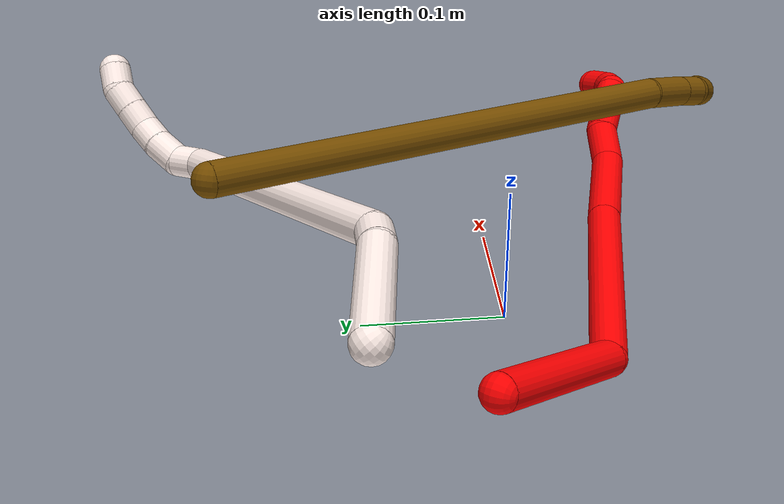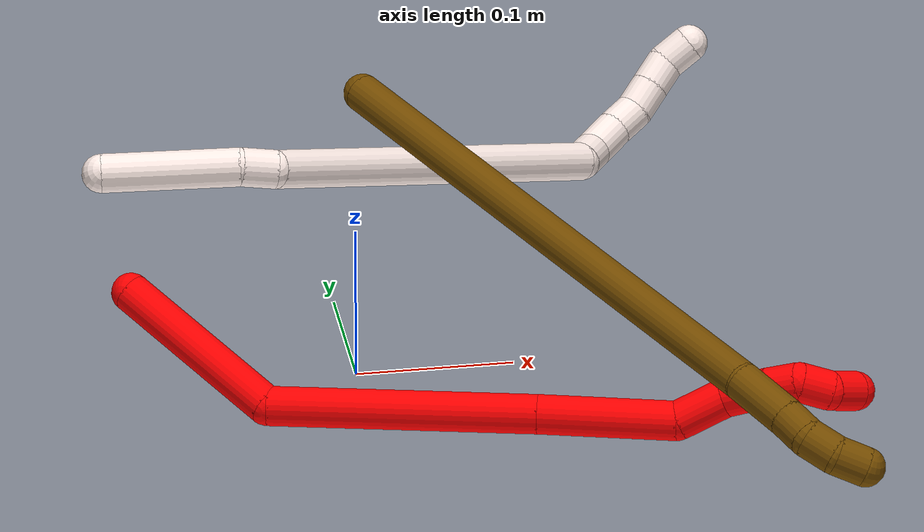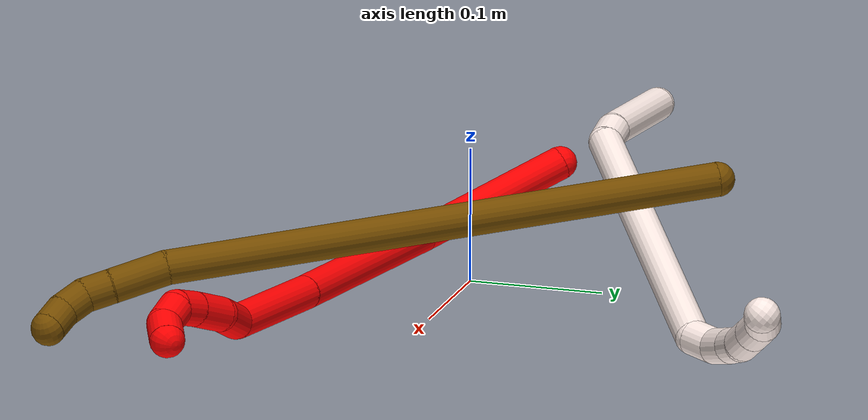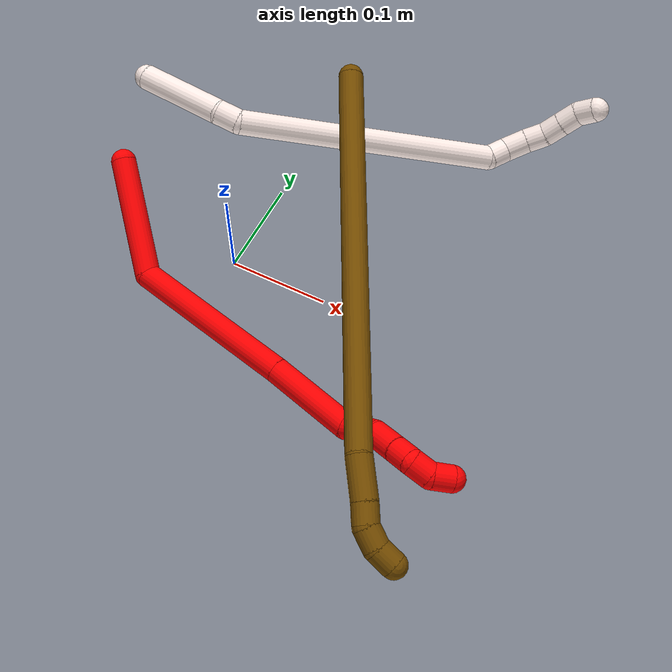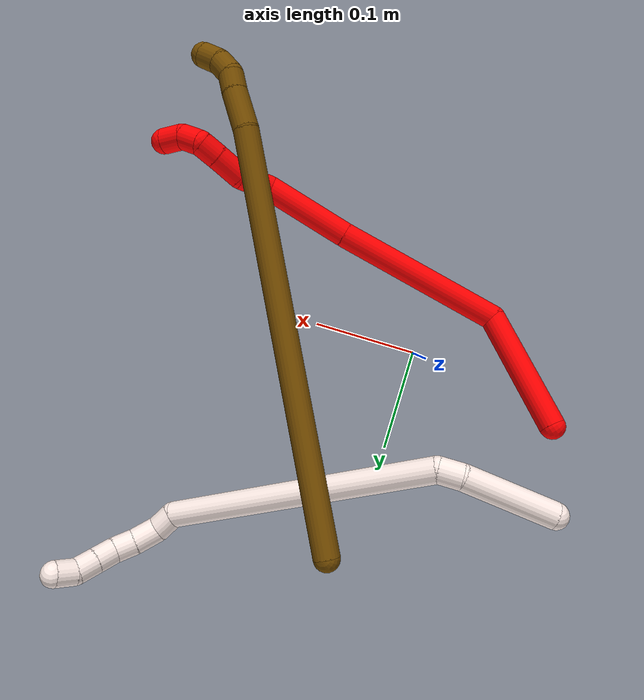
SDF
<sdf version="1.7">
 <world name="default">
  <model name="photoneo_s_sensor">
   <static>1</static>
   <pose>0 0 2 1.57079 1.57079 3.14159</pose>
   <link name="link">
    <inertial><mass>0.1</mass></inertial>
    <sensor name="sensor" type="depth">
     <update_rate>30</update_rate>
     <camera>
      <horizontal_fov>1.22</horizontal_fov>
      <image><width>1920</width><height>1200</height><format>B8G8R8</format></image>
      <clip><near>0.1</near><far>4</far></clip>
      <depth_camera><output>points</output></depth_camera>
     </camera>
     <plugin name="camera_plugin" filename="libgazebo_ros_depth_camera.so">
      <baseline>0.2</baseline>
      <alwaysOn>1</alwaysOn>
      <updateRate>0.0</updateRate>
      <cameraName>camera_ir</cameraName>
      <imageTopicName>/camera/color/image_raw</imageTopicName>
      <cameraInfoTopicName>/camera/color/camera_info</cameraInfoTopicName>
      <depthImageTopicName>/camera/depth/image_raw</depthImageTopicName>
      <depthImageCameraInfoTopicName>/camera/depth/camera_info</depthImageCameraInfoTopicName>
      <pointCloudTopicName>/camera/depth/points</pointCloudTopicName>
      <frameName>fr_optical</frameName>
      <pointCloudCutoff>0.1</pointCloudCutoff>
      <pointCloudCutoffMax>2.0</pointCloudCutoffMax>
      <distortionK1>0</distortionK1>
      <distortionK2>0</distortionK2>
      <distortionK3>0</distortionK3>
      <distortionT1>0</distortionT1>
      <distortionT2>0</distortionT2>
      <CxPrime>0</CxPrime>
      <Cx>0</Cx>
      <Cy>0</Cy>
      <focalLength>0</focalLength>
      <hackBaseline>0</hackBaseline>
     </plugin>
    </sensor>
   </link>
  </model>
  <model name="bin">
   <static>1</static>
   <link name="bottom">
    <collision name="collision-bottom">
     <pose>0 0 -0.01 0 -0 0</pose>
     <geometry><box><size>0.8 0.6 0.02</size></box></geometry>
     <surface>
      <friction><ode><mu>100</mu><mu2>100</mu2></ode></friction>
      <contact><collide_bitmask>65535</collide_bitmask></contact>
     </surface>
    </collision>
   </link>
   <link name="west_wall">
    <collision name="collision-west_wall">
     <pose>-0.41 0 0.1 0 -0 0</pose>
     <geometry><box><size>0.02 0.6 0.2</size></box></geometry>
     <surface>
      <friction><ode><mu>100</mu><mu2>100</mu2></ode></friction>
      <contact><collide_bitmask>65535</collide_bitmask></contact>
     </surface>
    </collision>
   </link>
   <link name="east_wall">
    <collision name="collision-east_wall">
     <pose>0.41 0 0.1 0 -0 0</pose>
     <geometry><box><size>0.02 0.6 0.2</size></box></geometry>
     <surface>
      <friction><ode><mu>100</mu><mu2>100</mu2></ode></friction>
      <contact><collide_bitmask>65535</collide_bitmask></contact>
     </surface>
    </collision>
   </link>
   <link name="south_wall">
    <collision name="collision-south_wall">
     <pose>0 -0.31 0.1 0 -0 0</pose>
     <geometry><box><size>0.8 0.02 0.2</size></box></geometry>
     <surface>
      <friction><ode><mu>100</mu><mu2>100</mu2></ode></friction>
      <contact><collide_bitmask>65535</collide_bitmask></contact>
     </surface>
    </collision>
   </link>
   <link name="north_wall">
    <collision name="collision-north_wall">
     <pose>0 0.31 0.1 0 -0 0</pose>
     <geometry><box><size>0.8 0.02 0.2</size></box></geometry>
     <surface>
      <friction><ode><mu>100</mu><mu2>100</mu2></ode></friction>
      <contact><collide_bitmask>65535</collide_bitmask></contact>
     </surface>
    </collision>
   </link>
  </model>
  <model name="2">
   <static>0</static>
   <link name="2">
    <collision name="collision-cylinder-e_1_1_4">
     <pose>0.050982 -0.031124 0.00722 1.34285 1.01097 0.828609</pose>
     <geometry><cylinder><radius>0.0125</radius><length>0.120334</length></cylinder></geometry>
     <surface>
      <friction><ode><mu>1.16</mu><mu2>1.16</mu2><slip1>0</slip1><slip2>0</slip2></ode></friction>
      <contact><ode><kp>1e+06</kp><kd>1</kd><max_vel>0</max_vel><min_depth>0.001</min_depth></ode></contact>
     </surface>
    </collision>
    <visual name="visual-cylinder-e_1_1_4">
     <pose>0.050982 -0.031124 0.00722 1.34285 1.01097 0.828609</pose>
     <geometry><cylinder><radius>0.0125</radius><length>0.120334</length></cylinder></geometry>
     <material><ambient>1 0 0 1</ambient></material>
    </visual>
    <collision name="collision-cylinder-e_2_4_5">
     <pose>0.177278 -0.070974 -0.022853 2.91176 1.10034 2.76957</pose>
     <geometry><cylinder><radius>0.0125</radius><length>0.168986</length></cylinder></geometry>
     <surface>
      <friction><ode><mu>1.16</mu><mu2>1.16</mu2><slip1>0</slip1><slip2>0</slip2></ode></friction>
      <contact><ode><kp>1e+06</kp><kd>1</kd><max_vel>0</max_vel><min_depth>0.001</min_depth></ode></contact>
     </surface>
    </collision>
    <visual name="visual-cylinder-e_2_4_5">
     <pose>0.177278 -0.070974 -0.022853 2.91176 1.10034 2.76957</pose>
     <geometry><cylinder><radius>0.0125</radius><length>0.168986</length></cylinder></geometry>
     <material><ambient>1 0 0 1</ambient></material>
    </visual>
    <collision name="collision-cylinder-e_3_5_6">
     <pose>0.292423 -0.084312 -0.077571 2.88277 1.14582 2.74345</pose>
     <geometry><cylinder><radius>0.0125</radius><length>0.087441</length></cylinder></geometry>
     <surface>
      <friction><ode><mu>1.16</mu><mu2>1.16</mu2><slip1>0</slip1><slip2>0</slip2></ode></friction>
      <contact><ode><kp>1e+06</kp><kd>1</kd><max_vel>0</max_vel><min_depth>0.001</min_depth></ode></contact>
     </surface>
    </collision>
    <visual name="visual-cylinder-e_3_5_6">
     <pose>0.292423 -0.084312 -0.077571 2.88277 1.14582 2.74345</pose>
     <geometry><cylinder><radius>0.0125</radius><length>0.087441</length></cylinder></geometry>
     <material><ambient>1 0 0 1</ambient></material>
    </visual>
    <collision name="collision-cylinder-e_4_6_7">
     <pose>0.345168 -0.082914 -0.103205 -2.50947 0.903467 -1.95547</pose>
     <geometry><cylinder><radius>0.0125</radius><length>0.03288</length></cylinder></geometry>
     <surface>
      <friction><ode><mu>1.16</mu><mu2>1.16</mu2><slip1>0</slip1><slip2>0</slip2></ode></friction>
      <contact><ode><kp>1e+06</kp><kd>1</kd><max_vel>0</max_vel><min_depth>0.001</min_depth></ode></contact>
     </surface>
    </collision>
    <visual name="visual-cylinder-e_4_6_7">
     <pose>0.345168 -0.082914 -0.103205 -2.50947 0.903467 -1.95547</pose>
     <geometry><cylinder><radius>0.0125</radius><length>0.03288</length></cylinder></geometry>
     <material><ambient>1 0 0 1</ambient></material>
    </visual>
    <collision name="collision-cylinder-e_5_7_8">
     <pose>0.372043 -0.073567 -0.114717 -2.3513 1.24643 -2.09002</pose>
     <geometry><cylinder><radius>0.0125</radius><length>0.029459</length></cylinder></geometry>
     <surface>
      <friction><ode><mu>1.16</mu><mu2>1.16</mu2><slip1>0</slip1><slip2>0</slip2></ode></friction>
      <contact><ode><kp>1e+06</kp><kd>1</kd><max_vel>0</max_vel><min_depth>0.001</min_depth></ode></contact>
     </surface>
    </collision>
    <visual name="visual-cylinder-e_5_7_8">
     <pose>0.372043 -0.073567 -0.114717 -2.3513 1.24643 -2.09002</pose>
     <geometry><cylinder><radius>0.0125</radius><length>0.029459</length></cylinder></geometry>
     <material><ambient>1 0 0 1</ambient></material>
    </visual>
    <collision name="collision-cylinder-e_6_8_9">
     <pose>0.395536 -0.06852 -0.120577 -2.55162 1.25857 -2.35082</pose>
     <geometry><cylinder><radius>0.0125</radius><length>0.020033</length></cylinder></geometry>
     <surface>
      <friction><ode><mu>1.16</mu><mu2>1.16</mu2><slip1>0</slip1><slip2>0</slip2></ode></friction>
      <contact><ode><kp>1e+06</kp><kd>1</kd><max_vel>0</max_vel><min_depth>0.001</min_depth></ode></contact>
     </surface>
    </collision>
    <visual name="visual-cylinder-e_6_8_9">
     <pose>0.395536 -0.06852 -0.120577 -2.55162 1.25857 -2.35082</pose>
     <geometry><cylinder><radius>0.0125</radius><length>0.020033</length></cylinder></geometry>
     <material><ambient>1 0 0 1</ambient></material>
    </visual>
    <collision name="collision-cylinder-e_7_9_10">
     <pose>0.412667 -0.070769 -0.128764 2.52846 0.83465 1.90152</pose>
     <geometry><cylinder><radius>0.0125</radius><length>0.020507</length></cylinder></geometry>
     <surface>
      <friction><ode><mu>1.16</mu><mu2>1.16</mu2><slip1>0</slip1><slip2>0</slip2></ode></friction>
      <contact><ode><kp>1e+06</kp><kd>1</kd><max_vel>0</max_vel><min_depth>0.001</min_depth></ode></contact>
     </surface>
    </collision>
    <visual name="visual-cylinder-e_7_9_10">
     <pose>0.412667 -0.070769 -0.128764 2.52846 0.83465 1.90152</pose>
     <geometry><cylinder><radius>0.0125</radius><length>0.020507</length></cylinder></geometry>
     <material><ambient>1 0 0 1</ambient></material>
    </visual>
    <collision name="collision-cylinder-e_8_10_2">
     <pose>0.424015 -0.077462 -0.143457 2.84892 0.377224 1.82655</pose>
     <geometry><cylinder><radius>0.0125</radius><length>0.020361</length></cylinder></geometry>
     <surface>
      <friction><ode><mu>1.16</mu><mu2>1.16</mu2><slip1>0</slip1><slip2>0</slip2></ode></friction>
      <contact><ode><kp>1e+06</kp><kd>1</kd><max_vel>0</max_vel><min_depth>0.001</min_depth></ode></contact>
     </surface>
    </collision>
    <visual name="visual-cylinder-e_8_10_2">
     <pose>0.424015 -0.077462 -0.143457 2.84892 0.377224 1.82655</pose>
     <geometry><cylinder><radius>0.0125</radius><length>0.020361</length></cylinder></geometry>
     <material><ambient>1 0 0 1</ambient></material>
    </visual>
    <collision name="collision-sphere-2">
     <pose>0.427765 -0.080192 -0.152519 0 -0 0</pose>
     <geometry><sphere><radius>0.0125</radius></sphere></geometry>
     <surface>
      <friction><ode><mu>1.16</mu><mu2>1.16</mu2><slip1>0</slip1><slip2>0</slip2></ode></friction>
      <contact><ode><kp>1e+06</kp><kd>1</kd><max_vel>0</max_vel><min_depth>0.001</min_depth></ode></contact>
     </surface>
    </collision>
    <visual name="visual-sphere-2">
     <pose>0.427765 -0.080192 -0.152519 0 -0 0</pose>
     <geometry><sphere><radius>0.0125</radius></sphere></geometry>
     <material><ambient>1 0 0 1</ambient></material>
    </visual>
    <collision name="collision-sphere-10">
     <pose>0.420265 -0.074731 -0.134395 0 -0 0</pose>
     <geometry><sphere><radius>0.0125</radius></sphere></geometry>
     <surface>
      <friction><ode><mu>1.16</mu><mu2>1.16</mu2><slip1>0</slip1><slip2>0</slip2></ode></friction>
      <contact><ode><kp>1e+06</kp><kd>1</kd><max_vel>0</max_vel><min_depth>0.001</min_depth></ode></contact>
     </surface>
    </collision>
    <visual name="visual-sphere-10">
     <pose>0.420265 -0.074731 -0.134395 0 -0 0</pose>
     <geometry><sphere><radius>0.0125</radius></sphere></geometry>
     <material><ambient>1 0 0 1</ambient></material>
    </visual>
    <collision name="collision-sphere-9">
     <pose>0.405069 -0.066808 -0.123134 0 -0 0</pose>
     <geometry><sphere><radius>0.0125</radius></sphere></geometry>
     <surface>
      <friction><ode><mu>1.16</mu><mu2>1.16</mu2><slip1>0</slip1><slip2>0</slip2></ode></friction>
      <contact><ode><kp>1e+06</kp><kd>1</kd><max_vel>0</max_vel><min_depth>0.001</min_depth></ode></contact>
     </surface>
    </collision>
    <visual name="visual-sphere-9">
     <pose>0.405069 -0.066808 -0.123134 0 -0 0</pose>
     <geometry><sphere><radius>0.0125</radius></sphere></geometry>
     <material><ambient>1 0 0 1</ambient></material>
    </visual>
    <collision name="collision-sphere-4">
     <pose>0.101965 -0.062249 0.01444 0 -0 0</pose>
     <geometry><sphere><radius>0.0125</radius></sphere></geometry>
     <surface>
      <friction><ode><mu>1.16</mu><mu2>1.16</mu2><slip1>0</slip1><slip2>0</slip2></ode></friction>
      <contact><ode><kp>1e+06</kp><kd>1</kd><max_vel>0</max_vel><min_depth>0.001</min_depth></ode></contact>
     </surface>
    </collision>
    <visual name="visual-sphere-4">
     <pose>0.101965 -0.062249 0.01444 0 -0 0</pose>
     <geometry><sphere><radius>0.0125</radius></sphere></geometry>
     <material><ambient>1 0 0 1</ambient></material>
    </visual>
    <collision name="collision-sphere-1">
     <geometry><sphere><radius>0.0125</radius></sphere></geometry>
     <surface>
      <friction><ode><mu>1.16</mu><mu2>1.16</mu2><slip1>0</slip1><slip2>0</slip2></ode></friction>
      <contact><ode><kp>1e+06</kp><kd>1</kd><max_vel>0</max_vel><min_depth>0.001</min_depth></ode></contact>
     </surface>
    </collision>
    <visual name="visual-sphere-1">
     <geometry><sphere><radius>0.0125</radius></sphere></geometry>
     <material><ambient>1 0 0 1</ambient></material>
    </visual>
    <collision name="collision-sphere-8">
     <pose>0.386004 -0.070231 -0.11802 0 -0 0</pose>
     <geometry><sphere><radius>0.0125</radius></sphere></geometry>
     <surface>
      <friction><ode><mu>1.16</mu><mu2>1.16</mu2><slip1>0</slip1><slip2>0</slip2></ode></friction>
      <contact><ode><kp>1e+06</kp><kd>1</kd><max_vel>0</max_vel><min_depth>0.001</min_depth></ode></contact>
     </surface>
    </collision>
    <visual name="visual-sphere-8">
     <pose>0.386004 -0.070231 -0.11802 0 -0 0</pose>
     <geometry><sphere><radius>0.0125</radius></sphere></geometry>
     <material><ambient>1 0 0 1</ambient></material>
    </visual>
    <collision name="collision-sphere-5">
     <pose>0.252592 -0.079699 -0.060145 0 -0 0</pose>
     <geometry><sphere><radius>0.0125</radius></sphere></geometry>
     <surface>
      <friction><ode><mu>1.16</mu><mu2>1.16</mu2><slip1>0</slip1><slip2>0</slip2></ode></friction>
      <contact><ode><kp>1e+06</kp><kd>1</kd><max_vel>0</max_vel><min_depth>0.001</min_depth></ode></contact>
     </surface>
    </collision>
    <visual name="visual-sphere-5">
     <pose>0.252592 -0.079699 -0.060145 0 -0 0</pose>
     <geometry><sphere><radius>0.0125</radius></sphere></geometry>
     <material><ambient>1 0 0 1</ambient></material>
    </visual>
    <collision name="collision-sphere-6">
     <pose>0.332255 -0.088926 -0.094997 0 -0 0</pose>
     <geometry><sphere><radius>0.0125</radius></sphere></geometry>
     <surface>
      <friction><ode><mu>1.16</mu><mu2>1.16</mu2><slip1>0</slip1><slip2>0</slip2></ode></friction>
      <contact><ode><kp>1e+06</kp><kd>1</kd><max_vel>0</max_vel><min_depth>0.001</min_depth></ode></contact>
     </surface>
    </collision>
    <visual name="visual-sphere-6">
     <pose>0.332255 -0.088926 -0.094997 0 -0 0</pose>
     <geometry><sphere><radius>0.0125</radius></sphere></geometry>
     <material><ambient>1 0 0 1</ambient></material>
    </visual>
    <collision name="collision-sphere-7">
     <pose>0.358081 -0.076903 -0.111414 0 -0 0</pose>
     <geometry><sphere><radius>0.0125</radius></sphere></geometry>
     <surface>
      <friction><ode><mu>1.16</mu><mu2>1.16</mu2><slip1>0</slip1><slip2>0</slip2></ode></friction>
      <contact><ode><kp>1e+06</kp><kd>1</kd><max_vel>0</max_vel><min_depth>0.001</min_depth></ode></contact>
     </surface>
    </collision>
    <visual name="visual-sphere-7">
     <pose>0.358081 -0.076903 -0.111414 0 -0 0</pose>
     <geometry><sphere><radius>0.0125</radius></sphere></geometry>
     <material><ambient>1 0 0 1</ambient></material>
    </visual>
    <inertial>
     <pose>0.217982 -0.064811 -0.049051 0 -0 0</pose>
     <mass>0.5</mass>
     <inertia>
      <ixx>2.4e-05</ixx>
      <ixy>0</ixy>
      <ixz>0</ixz>
      <iyy>0.00071</iyy>
      <iyz>0</iyz>
      <izz>-0.000442</izz>
     </inertia>
    </inertial>
   </link>
   <pose>-0.139023 0.02738 0.055103 1.46531 -0.162454 -0.660799</pose>
  </model>
  <model name="11">
   <static>0</static>
   <link name="11">
    <collision name="collision-cylinder-e_1_1_4">
     <pose>0.01142 0.041667 -0.009585 -1.79691 0.260998 -0.326792</pose>
     <geometry><cylinder><radius>0.0125</radius><length>0.088509</length></cylinder></geometry>
     <surface>
      <friction><ode><mu>1.16</mu><mu2>1.16</mu2><slip1>0</slip1><slip2>0</slip2></ode></friction>
      <contact><ode><kp>1e+06</kp><kd>1</kd><max_vel>0</max_vel><min_depth>0.001</min_depth></ode></contact>
     </surface>
    </collision>
    <visual name="visual-cylinder-e_1_1_4">
     <pose>0.01142 0.041667 -0.009585 -1.79691 0.260998 -0.326792</pose>
     <geometry><cylinder><radius>0.0125</radius><length>0.088509</length></cylinder></geometry>
     <material><ambient>1 0.933333 0.909804 1</ambient></material>
    </visual>
    <collision name="collision-cylinder-e_2_4_5">
     <pose>0.025239 0.09458 -0.019105 -1.56492 0.210213 -0.208989</pose>
     <geometry><cylinder><radius>0.0125</radius><length>0.022998</length></cylinder></geometry>
     <surface>
      <friction><ode><mu>1.16</mu><mu2>1.16</mu2><slip1>0</slip1><slip2>0</slip2></ode></friction>
      <contact><ode><kp>1e+06</kp><kd>1</kd><max_vel>0</max_vel><min_depth>0.001</min_depth></ode></contact>
     </surface>
    </collision>
    <visual name="visual-cylinder-e_2_4_5">
     <pose>0.025239 0.09458 -0.019105 -1.56492 0.210213 -0.208989</pose>
     <geometry><cylinder><radius>0.0125</radius><length>0.022998</length></cylinder></geometry>
     <material><ambient>1 0.933333 0.909804 1</ambient></material>
    </visual>
    <collision name="collision-cylinder-e_3_5_6">
     <pose>0.076686 0.213076 0.038529 -1.07818 0.38304 -0.230942</pose>
     <geometry><cylinder><radius>0.0125</radius><length>0.262468</length></cylinder></geometry>
     <surface>
      <friction><ode><mu>1.16</mu><mu2>1.16</mu2><slip1>0</slip1><slip2>0</slip2></ode></friction>
      <contact><ode><kp>1e+06</kp><kd>1</kd><max_vel>0</max_vel><min_depth>0.001</min_depth></ode></contact>
     </surface>
    </collision>
    <visual name="visual-cylinder-e_3_5_6">
     <pose>0.076686 0.213076 0.038529 -1.07818 0.38304 -0.230942</pose>
     <geometry><cylinder><radius>0.0125</radius><length>0.262468</length></cylinder></geometry>
     <material><ambient>1 0.933333 0.909804 1</ambient></material>
    </visual>
    <collision name="collision-cylinder-e_4_6_7">
     <pose>0.13258 0.324519 0.102958 -0.548511 0.70533 -0.206363</pose>
     <geometry><cylinder><radius>0.0125</radius><length>0.021121</length></cylinder></geometry>
     <surface>
      <friction><ode><mu>1.16</mu><mu2>1.16</mu2><slip1>0</slip1><slip2>0</slip2></ode></friction>
      <contact><ode><kp>1e+06</kp><kd>1</kd><max_vel>0</max_vel><min_depth>0.001</min_depth></ode></contact>
     </surface>
    </collision>
    <visual name="visual-cylinder-e_4_6_7">
     <pose>0.13258 0.324519 0.102958 -0.548511 0.70533 -0.206363</pose>
     <geometry><cylinder><radius>0.0125</radius><length>0.021121</length></cylinder></geometry>
     <material><ambient>1 0.933333 0.909804 1</ambient></material>
    </visual>
    <collision name="collision-cylinder-e_5_7_8">
     <pose>0.149706 0.334776 0.112724 -1.12409 0.991554 -0.656585</pose>
     <geometry><cylinder><radius>0.0125</radius><length>0.024569</length></cylinder></geometry>
     <surface>
      <friction><ode><mu>1.16</mu><mu2>1.16</mu2><slip1>0</slip1><slip2>0</slip2></ode></friction>
      <contact><ode><kp>1e+06</kp><kd>1</kd><max_vel>0</max_vel><min_depth>0.001</min_depth></ode></contact>
     </surface>
    </collision>
    <visual name="visual-cylinder-e_5_7_8">
     <pose>0.149706 0.334776 0.112724 -1.12409 0.991554 -0.656585</pose>
     <geometry><cylinder><radius>0.0125</radius><length>0.024569</length></cylinder></geometry>
     <material><ambient>1 0.933333 0.909804 1</ambient></material>
    </visual>
    <collision name="collision-cylinder-e_6_8_9">
     <pose>0.168336 0.346392 0.116735 -1.37405 0.97503 -0.820532</pose>
     <geometry><cylinder><radius>0.0125</radius><length>0.020174</length></cylinder></geometry>
     <surface>
      <friction><ode><mu>1.16</mu><mu2>1.16</mu2><slip1>0</slip1><slip2>0</slip2></ode></friction>
      <contact><ode><kp>1e+06</kp><kd>1</kd><max_vel>0</max_vel><min_depth>0.001</min_depth></ode></contact>
     </surface>
    </collision>
    <visual name="visual-cylinder-e_6_8_9">
     <pose>0.168336 0.346392 0.116735 -1.37405 0.97503 -0.820532</pose>
     <geometry><cylinder><radius>0.0125</radius><length>0.020174</length></cylinder></geometry>
     <material><ambient>1 0.933333 0.909804 1</ambient></material>
    </visual>
    <collision name="collision-cylinder-e_7_9_10">
     <pose>0.186154 0.355346 0.117403 -1.6991 1.22314 -1.34647</pose>
     <geometry><cylinder><radius>0.0125</radius><length>0.020142</length></cylinder></geometry>
     <surface>
      <friction><ode><mu>1.16</mu><mu2>1.16</mu2><slip1>0</slip1><slip2>0</slip2></ode></friction>
      <contact><ode><kp>1e+06</kp><kd>1</kd><max_vel>0</max_vel><min_depth>0.001</min_depth></ode></contact>
     </surface>
    </collision>
    <visual name="visual-cylinder-e_7_9_10">
     <pose>0.186154 0.355346 0.117403 -1.6991 1.22314 -1.34647</pose>
     <geometry><cylinder><radius>0.0125</radius><length>0.020142</length></cylinder></geometry>
     <material><ambient>1 0.933333 0.909804 1</ambient></material>
    </visual>
    <collision name="collision-cylinder-e_8_10_11">
     <pose>0.205015 0.362143 0.11645 -1.72092 1.22036 -1.36511</pose>
     <geometry><cylinder><radius>0.0125</radius><length>0.02</length></cylinder></geometry>
     <surface>
      <friction><ode><mu>1.16</mu><mu2>1.16</mu2><slip1>0</slip1><slip2>0</slip2></ode></friction>
      <contact><ode><kp>1e+06</kp><kd>1</kd><max_vel>0</max_vel><min_depth>0.001</min_depth></ode></contact>
     </surface>
    </collision>
    <visual name="visual-cylinder-e_8_10_11">
     <pose>0.205015 0.362143 0.11645 -1.72092 1.22036 -1.36511</pose>
     <geometry><cylinder><radius>0.0125</radius><length>0.02</length></cylinder></geometry>
     <material><ambient>1 0.933333 0.909804 1</ambient></material>
    </visual>
    <collision name="collision-cylinder-e_9_11_2">
     <pose>0.221932 0.371293 0.112705 -2.08253 0.850797 -1.31747</pose>
     <geometry><cylinder><radius>0.0125</radius><length>0.020019</length></cylinder></geometry>
     <surface>
      <friction><ode><mu>1.16</mu><mu2>1.16</mu2><slip1>0</slip1><slip2>0</slip2></ode></friction>
      <contact><ode><kp>1e+06</kp><kd>1</kd><max_vel>0</max_vel><min_depth>0.001</min_depth></ode></contact>
     </surface>
    </collision>
    <visual name="visual-cylinder-e_9_11_2">
     <pose>0.221932 0.371293 0.112705 -2.08253 0.850797 -1.31747</pose>
     <geometry><cylinder><radius>0.0125</radius><length>0.020019</length></cylinder></geometry>
     <material><ambient>1 0.933333 0.909804 1</ambient></material>
    </visual>
    <collision name="collision-sphere-2">
     <pose>0.229458 0.377047 0.109473 0 -0 0</pose>
     <geometry><sphere><radius>0.0125</radius></sphere></geometry>
     <surface>
      <friction><ode><mu>1.16</mu><mu2>1.16</mu2><slip1>0</slip1><slip2>0</slip2></ode></friction>
      <contact><ode><kp>1e+06</kp><kd>1</kd><max_vel>0</max_vel><min_depth>0.001</min_depth></ode></contact>
     </surface>
    </collision>
    <visual name="visual-sphere-2">
     <pose>0.229458 0.377047 0.109473 0 -0 0</pose>
     <geometry><sphere><radius>0.0125</radius></sphere></geometry>
     <material><ambient>1 0.933333 0.909804 1</ambient></material>
    </visual>
    <collision name="collision-sphere-11">
     <pose>0.214407 0.365538 0.115937 0 -0 0</pose>
     <geometry><sphere><radius>0.0125</radius></sphere></geometry>
     <surface>
      <friction><ode><mu>1.16</mu><mu2>1.16</mu2><slip1>0</slip1><slip2>0</slip2></ode></friction>
      <contact><ode><kp>1e+06</kp><kd>1</kd><max_vel>0</max_vel><min_depth>0.001</min_depth></ode></contact>
     </surface>
    </collision>
    <visual name="visual-sphere-11">
     <pose>0.214407 0.365538 0.115937 0 -0 0</pose>
     <geometry><sphere><radius>0.0125</radius></sphere></geometry>
     <material><ambient>1 0.933333 0.909804 1</ambient></material>
    </visual>
    <collision name="collision-sphere-10">
     <pose>0.195622 0.358749 0.116964 0 -0 0</pose>
     <geometry><sphere><radius>0.0125</radius></sphere></geometry>
     <surface>
      <friction><ode><mu>1.16</mu><mu2>1.16</mu2><slip1>0</slip1><slip2>0</slip2></ode></friction>
      <contact><ode><kp>1e+06</kp><kd>1</kd><max_vel>0</max_vel><min_depth>0.001</min_depth></ode></contact>
     </surface>
    </collision>
    <visual name="visual-sphere-10">
     <pose>0.195622 0.358749 0.116964 0 -0 0</pose>
     <geometry><sphere><radius>0.0125</radius></sphere></geometry>
     <material><ambient>1 0.933333 0.909804 1</ambient></material>
    </visual>
    <collision name="collision-sphere-9">
     <pose>0.176685 0.351943 0.117842 0 -0 0</pose>
     <geometry><sphere><radius>0.0125</radius></sphere></geometry>
     <surface>
      <friction><ode><mu>1.16</mu><mu2>1.16</mu2><slip1>0</slip1><slip2>0</slip2></ode></friction>
      <contact><ode><kp>1e+06</kp><kd>1</kd><max_vel>0</max_vel><min_depth>0.001</min_depth></ode></contact>
     </surface>
    </collision>
    <visual name="visual-sphere-9">
     <pose>0.176685 0.351943 0.117842 0 -0 0</pose>
     <geometry><sphere><radius>0.0125</radius></sphere></geometry>
     <material><ambient>1 0.933333 0.909804 1</ambient></material>
    </visual>
    <collision name="collision-sphere-4">
     <pose>0.022839 0.083334 -0.019171 0 -0 0</pose>
     <geometry><sphere><radius>0.0125</radius></sphere></geometry>
     <surface>
      <friction><ode><mu>1.16</mu><mu2>1.16</mu2><slip1>0</slip1><slip2>0</slip2></ode></friction>
      <contact><ode><kp>1e+06</kp><kd>1</kd><max_vel>0</max_vel><min_depth>0.001</min_depth></ode></contact>
     </surface>
    </collision>
    <visual name="visual-sphere-4">
     <pose>0.022839 0.083334 -0.019171 0 -0 0</pose>
     <geometry><sphere><radius>0.0125</radius></sphere></geometry>
     <material><ambient>1 0.933333 0.909804 1</ambient></material>
    </visual>
    <collision name="collision-sphere-1">
     <geometry><sphere><radius>0.0125</radius></sphere></geometry>
     <surface>
      <friction><ode><mu>1.16</mu><mu2>1.16</mu2><slip1>0</slip1><slip2>0</slip2></ode></friction>
      <contact><ode><kp>1e+06</kp><kd>1</kd><max_vel>0</max_vel><min_depth>0.001</min_depth></ode></contact>
     </surface>
    </collision>
    <visual name="visual-sphere-1">
     <geometry><sphere><radius>0.0125</radius></sphere></geometry>
     <material><ambient>1 0.933333 0.909804 1</ambient></material>
    </visual>
    <collision name="collision-sphere-8">
     <pose>0.159987 0.340841 0.115629 0 -0 0</pose>
     <geometry><sphere><radius>0.0125</radius></sphere></geometry>
     <surface>
      <friction><ode><mu>1.16</mu><mu2>1.16</mu2><slip1>0</slip1><slip2>0</slip2></ode></friction>
      <contact><ode><kp>1e+06</kp><kd>1</kd><max_vel>0</max_vel><min_depth>0.001</min_depth></ode></contact>
     </surface>
    </collision>
    <visual name="visual-sphere-8">
     <pose>0.159987 0.340841 0.115629 0 -0 0</pose>
     <geometry><sphere><radius>0.0125</radius></sphere></geometry>
     <material><ambient>1 0.933333 0.909804 1</ambient></material>
    </visual>
    <collision name="collision-sphere-5">
     <pose>0.027638 0.105826 -0.019039 0 -0 0</pose>
     <geometry><sphere><radius>0.0125</radius></sphere></geometry>
     <surface>
      <friction><ode><mu>1.16</mu><mu2>1.16</mu2><slip1>0</slip1><slip2>0</slip2></ode></friction>
      <contact><ode><kp>1e+06</kp><kd>1</kd><max_vel>0</max_vel><min_depth>0.001</min_depth></ode></contact>
     </surface>
    </collision>
    <visual name="visual-sphere-5">
     <pose>0.027638 0.105826 -0.019039 0 -0 0</pose>
     <geometry><sphere><radius>0.0125</radius></sphere></geometry>
     <material><ambient>1 0.933333 0.909804 1</ambient></material>
    </visual>
    <collision name="collision-sphere-6">
     <pose>0.125733 0.320327 0.096097 0 -0 0</pose>
     <geometry><sphere><radius>0.0125</radius></sphere></geometry>
     <surface>
      <friction><ode><mu>1.16</mu><mu2>1.16</mu2><slip1>0</slip1><slip2>0</slip2></ode></friction>
      <contact><ode><kp>1e+06</kp><kd>1</kd><max_vel>0</max_vel><min_depth>0.001</min_depth></ode></contact>
     </surface>
    </collision>
    <visual name="visual-sphere-6">
     <pose>0.125733 0.320327 0.096097 0 -0 0</pose>
     <geometry><sphere><radius>0.0125</radius></sphere></geometry>
     <material><ambient>1 0.933333 0.909804 1</ambient></material>
    </visual>
    <collision name="collision-sphere-7">
     <pose>0.139426 0.328712 0.109819 0 -0 0</pose>
     <geometry><sphere><radius>0.0125</radius></sphere></geometry>
     <surface>
      <friction><ode><mu>1.16</mu><mu2>1.16</mu2><slip1>0</slip1><slip2>0</slip2></ode></friction>
      <contact><ode><kp>1e+06</kp><kd>1</kd><max_vel>0</max_vel><min_depth>0.001</min_depth></ode></contact>
     </surface>
    </collision>
    <visual name="visual-sphere-7">
     <pose>0.139426 0.328712 0.109819 0 -0 0</pose>
     <geometry><sphere><radius>0.0125</radius></sphere></geometry>
     <material><ambient>1 0.933333 0.909804 1</ambient></material>
    </visual>
    <inertial>
     <pose>0.087772 0.211379 0.046148 0 -0 0</pose>
     <mass>0.5</mass>
     <inertia>
      <ixx>0.001104</ixx>
      <ixy>0</ixy>
      <ixz>0</ixz>
      <iyy>0.000497</iyy>
      <iyz>0</iyz>
      <izz>-0.001886</izz>
     </inertia>
    </inertial>
   </link>
   <pose>-0.148501 0.099696 0.10418 -2.68815 -0.77841 1.12113</pose>
  </model>
  <model name="12">
   <static>0</static>
   <link name="12">
    <collision name="collision-cylinder-e_1_1_4">
     <pose>0.1037 -0.163749 0.046149 1.2961 0.547407 0.418892</pose>
     <geometry><cylinder><radius>0.0125</radius><length>0.398483</length></cylinder></geometry>
     <surface>
      <friction><ode><mu>1.16</mu><mu2>1.16</mu2><slip1>0</slip1><slip2>0</slip2></ode></friction>
      <contact><ode><kp>1e+06</kp><kd>1</kd><max_vel>0</max_vel><min_depth>0.001</min_depth></ode></contact>
     </surface>
    </collision>
    <visual name="visual-cylinder-e_1_1_4">
     <pose>0.1037 -0.163749 0.046149 1.2961 0.547407 0.418892</pose>
     <geometry><cylinder><radius>0.0125</radius><length>0.398483</length></cylinder></geometry>
     <material><ambient>0.466667 0.301961 0 1</ambient></material>
    </visual>
    <collision name="collision-cylinder-e_2_4_5">
     <pose>0.220648 -0.342921 0.094888 1.40435 0.702805 0.601512</pose>
     <geometry><cylinder><radius>0.0125</radius><length>0.040991</length></cylinder></geometry>
     <surface>
      <friction><ode><mu>1.16</mu><mu2>1.16</mu2><slip1>0</slip1><slip2>0</slip2></ode></friction>
      <contact><ode><kp>1e+06</kp><kd>1</kd><max_vel>0</max_vel><min_depth>0.001</min_depth></ode></contact>
     </surface>
    </collision>
    <visual name="visual-cylinder-e_2_4_5">
     <pose>0.220648 -0.342921 0.094888 1.40435 0.702805 0.601512</pose>
     <geometry><cylinder><radius>0.0125</radius><length>0.040991</length></cylinder></geometry>
     <material><ambient>0.466667 0.301961 0 1</ambient></material>
    </visual>
    <collision name="collision-cylinder-e_3_5_6">
     <pose>0.23996 -0.366412 0.098391 1.45828 0.641492 0.577023</pose>
     <geometry><cylinder><radius>0.0125</radius><length>0.020271</length></cylinder></geometry>
     <surface>
      <friction><ode><mu>1.16</mu><mu2>1.16</mu2><slip1>0</slip1><slip2>0</slip2></ode></friction>
      <contact><ode><kp>1e+06</kp><kd>1</kd><max_vel>0</max_vel><min_depth>0.001</min_depth></ode></contact>
     </surface>
    </collision>
    <visual name="visual-cylinder-e_3_5_6">
     <pose>0.23996 -0.366412 0.098391 1.45828 0.641492 0.577023</pose>
     <geometry><cylinder><radius>0.0125</radius><length>0.020271</length></cylinder></geometry>
     <material><ambient>0.466667 0.301961 0 1</ambient></material>
    </visual>
    <collision name="collision-cylinder-e_4_6_7">
     <pose>0.25498 -0.379103 0.099846 1.45372 1.09152 0.990332</pose>
     <geometry><cylinder><radius>0.0125</radius><length>0.020183</length></cylinder></geometry>
     <surface>
      <friction><ode><mu>1.16</mu><mu2>1.16</mu2><slip1>0</slip1><slip2>0</slip2></ode></friction>
      <contact><ode><kp>1e+06</kp><kd>1</kd><max_vel>0</max_vel><min_depth>0.001</min_depth></ode></contact>
     </surface>
    </collision>
    <visual name="visual-cylinder-e_4_6_7">
     <pose>0.25498 -0.379103 0.099846 1.45372 1.09152 0.990332</pose>
     <geometry><cylinder><radius>0.0125</radius><length>0.020183</length></cylinder></geometry>
     <material><ambient>0.466667 0.301961 0 1</ambient></material>
    </visual>
    <collision name="collision-cylinder-e_5_7_2">
     <pose>0.273873 -0.384935 0.101078 1.0537 1.43163 0.936707</pose>
     <geometry><cylinder><radius>0.0125</radius><length>0.020072</length></cylinder></geometry>
     <surface>
      <friction><ode><mu>1.16</mu><mu2>1.16</mu2><slip1>0</slip1><slip2>0</slip2></ode></friction>
      <contact><ode><kp>1e+06</kp><kd>1</kd><max_vel>0</max_vel><min_depth>0.001</min_depth></ode></contact>
     </surface>
    </collision>
    <visual name="visual-cylinder-e_5_7_2">
     <pose>0.273873 -0.384935 0.101078 1.0537 1.43163 0.936707</pose>
     <geometry><cylinder><radius>0.0125</radius><length>0.020072</length></cylinder></geometry>
     <material><ambient>0.466667 0.301961 0 1</ambient></material>
    </visual>
    <collision name="collision-sphere-2">
     <pose>0.283812 -0.386145 0.101767 0 -0 0</pose>
     <geometry><sphere><radius>0.0125</radius></sphere></geometry>
     <surface>
      <friction><ode><mu>1.16</mu><mu2>1.16</mu2><slip1>0</slip1><slip2>0</slip2></ode></friction>
      <contact><ode><kp>1e+06</kp><kd>1</kd><max_vel>0</max_vel><min_depth>0.001</min_depth></ode></contact>
     </surface>
    </collision>
    <visual name="visual-sphere-2">
     <pose>0.283812 -0.386145 0.101767 0 -0 0</pose>
     <geometry><sphere><radius>0.0125</radius></sphere></geometry>
     <material><ambient>0.466667 0.301961 0 1</ambient></material>
    </visual>
    <collision name="collision-sphere-7">
     <pose>0.263934 -0.383725 0.10039 0 -0 0</pose>
     <geometry><sphere><radius>0.0125</radius></sphere></geometry>
     <surface>
      <friction><ode><mu>1.16</mu><mu2>1.16</mu2><slip1>0</slip1><slip2>0</slip2></ode></friction>
      <contact><ode><kp>1e+06</kp><kd>1</kd><max_vel>0</max_vel><min_depth>0.001</min_depth></ode></contact>
     </surface>
    </collision>
    <visual name="visual-sphere-7">
     <pose>0.263934 -0.383725 0.10039 0 -0 0</pose>
     <geometry><sphere><radius>0.0125</radius></sphere></geometry>
     <material><ambient>0.466667 0.301961 0 1</ambient></material>
    </visual>
    <collision name="collision-sphere-6">
     <pose>0.246025 -0.374481 0.099303 0 -0 0</pose>
     <geometry><sphere><radius>0.0125</radius></sphere></geometry>
     <surface>
      <friction><ode><mu>1.16</mu><mu2>1.16</mu2><slip1>0</slip1><slip2>0</slip2></ode></friction>
      <contact><ode><kp>1e+06</kp><kd>1</kd><max_vel>0</max_vel><min_depth>0.001</min_depth></ode></contact>
     </surface>
    </collision>
    <visual name="visual-sphere-6">
     <pose>0.246025 -0.374481 0.099303 0 -0 0</pose>
     <geometry><sphere><radius>0.0125</radius></sphere></geometry>
     <material><ambient>0.466667 0.301961 0 1</ambient></material>
    </visual>
    <collision name="collision-sphere-5">
     <pose>0.233895 -0.358343 0.097479 0 -0 0</pose>
     <geometry><sphere><radius>0.0125</radius></sphere></geometry>
     <surface>
      <friction><ode><mu>1.16</mu><mu2>1.16</mu2><slip1>0</slip1><slip2>0</slip2></ode></friction>
      <contact><ode><kp>1e+06</kp><kd>1</kd><max_vel>0</max_vel><min_depth>0.001</min_depth></ode></contact>
     </surface>
    </collision>
    <visual name="visual-sphere-5">
     <pose>0.233895 -0.358343 0.097479 0 -0 0</pose>
     <geometry><sphere><radius>0.0125</radius></sphere></geometry>
     <material><ambient>0.466667 0.301961 0 1</ambient></material>
    </visual>
    <collision name="collision-sphere-1">
     <geometry><sphere><radius>0.0125</radius></sphere></geometry>
     <surface>
      <friction><ode><mu>1.16</mu><mu2>1.16</mu2><slip1>0</slip1><slip2>0</slip2></ode></friction>
      <contact><ode><kp>1e+06</kp><kd>1</kd><max_vel>0</max_vel><min_depth>0.001</min_depth></ode></contact>
     </surface>
    </collision>
    <visual name="visual-sphere-1">
     <geometry><sphere><radius>0.0125</radius></sphere></geometry>
     <material><ambient>0.466667 0.301961 0 1</ambient></material>
    </visual>
    <collision name="collision-sphere-4">
     <pose>0.2074 -0.327498 0.092297 0 -0 0</pose>
     <geometry><sphere><radius>0.0125</radius></sphere></geometry>
     <surface>
      <friction><ode><mu>1.16</mu><mu2>1.16</mu2><slip1>0</slip1><slip2>0</slip2></ode></friction>
      <contact><ode><kp>1e+06</kp><kd>1</kd><max_vel>0</max_vel><min_depth>0.001</min_depth></ode></contact>
     </surface>
    </collision>
    <visual name="visual-sphere-4">
     <pose>0.2074 -0.327498 0.092297 0 -0 0</pose>
     <geometry><sphere><radius>0.0125</radius></sphere></geometry>
     <material><ambient>0.466667 0.301961 0 1</ambient></material>
    </visual>
    <inertial>
     <pose>0.13175 -0.204227 0.056635 0 -0 0</pose>
     <mass>0.5</mass>
     <inertia>
      <ixx>0.005995</ixx>
      <ixy>0</ixy>
      <ixz>0</ixz>
      <iyy>0.004206</iyy>
      <iyz>0</iyz>
      <izz>0.001601</izz>
     </inertia>
    </inertial>
   </link>
   <pose>0.033024 0.194144 0.102568 0.126011 0.450786 -0.071554</pose>
  </model>
 </world>
</sdf>
